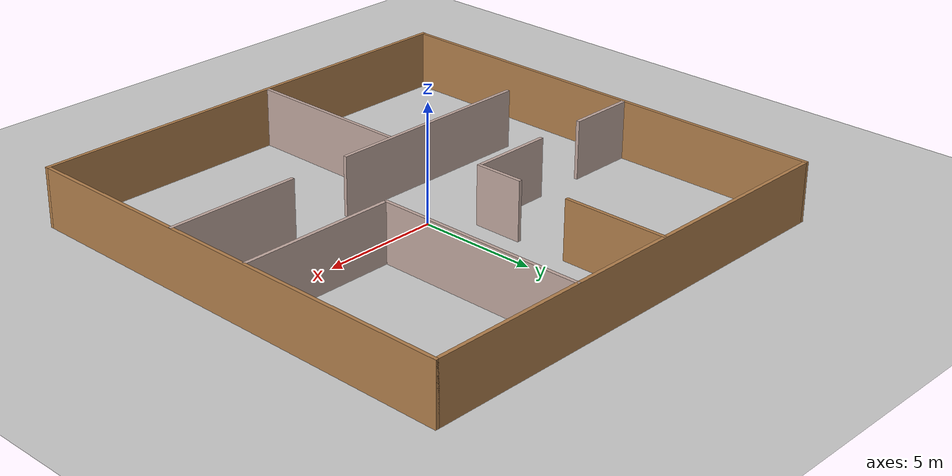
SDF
<sdf version="1.6">
 <world name="default">
  <light name="sun" type="directional">
   <pose>0 0 10 0 -0 0</pose>
   <diffuse>0.8 0.8 0.8 1</diffuse>
   <specular>0.2 0.2 0.2 1</specular>
   <attenuation>
    <range>1000</range>
    <constant>0.9</constant>
    <linear>0.01</linear>
    <quadratic>0.001</quadratic>
   </attenuation>
   <direction>-0.5 0.1 -0.9</direction>
  </light>
  <model name="ground_plane">
   <static>1</static>
   <link name="link">
    <collision name="collision">
     <geometry><plane><normal>0 0 1</normal><size>100 100</size></plane></geometry>
     <surface>
      <contact><collide_bitmask>65535</collide_bitmask></contact>
      <friction><ode><mu>100</mu><mu2>50</mu2></ode></friction>
     </surface>
    </collision>
    <visual name="visual">
     <cast_shadows>0</cast_shadows>
     <geometry><plane><normal>0 0 1</normal><size>100 100</size></plane></geometry>
     <material>
      <script><uri>file://media/materials/scripts/gazebo.material</uri><name>Gazebo/Grey</name></script>
     </material>
    </visual>
   </link>
  </model>
  <gravity>0 0 -9.8</gravity>
  <magnetic_field>6e-06 2.3e-05 -4.2e-05</magnetic_field>
  <atmosphere type="adiabatic"/>
  <physics name="default_physics" default="0" type="ode">
   <max_step_size>0.001</max_step_size>
   <real_time_factor>1</real_time_factor>
   <real_time_update_rate>1000</real_time_update_rate>
  </physics>
  <scene><ambient>0.4 0.4 0.4 1</ambient><background>0.7 0.7 0.7 1</background><shadows>1</shadows></scene>
  <audio><device>default</device></audio>
  <spherical_coordinates>
   <surface_model>EARTH_WGS84</surface_model>
   <latitude_deg>0</latitude_deg>
   <longitude_deg>0</longitude_deg>
   <elevation>0</elevation>
   <heading_deg>0</heading_deg>
  </spherical_coordinates>
  <model name="surroundings">
   <link name="Wall_0">
    <collision name="Wall_0_Collision">
     <geometry><box><size>20.15 0.15 2.5</size></box></geometry>
     <pose>0 0 1.25 0 -0 0</pose>
    </collision>
    <visual name="Wall_0_Visual">
     <pose>0 0 1.25 0 -0 0</pose>
     <geometry><box><size>20.15 0.15 2.5</size></box></geometry>
     <material>
      <script><uri>file://media/materials/scripts/gazebo.material</uri><name>Gazebo/Wood</name></script>
      <ambient>1 1 1 1</ambient>
     </material>
     <meta><layer>0</layer></meta>
    </visual>
    <pose>10 0 0 0 -0 -1.5708</pose>
   </link>
   <link name="Wall_1">
    <collision name="Wall_1_Collision">
     <geometry><box><size>20.15 0.15 2.5</size></box></geometry>
     <pose>0 0 1.25 0 -0 0</pose>
    </collision>
    <visual name="Wall_1_Visual">
     <pose>0 0 1.25 0 -0 0</pose>
     <geometry><box><size>20.15 0.15 2.5</size></box></geometry>
     <material>
      <script><uri>file://media/materials/scripts/gazebo.material</uri><name>Gazebo/Wood</name></script>
      <ambient>1 1 1 1</ambient>
     </material>
     <meta><layer>0</layer></meta>
    </visual>
    <pose>0 -10 0 0 -0 3.14159</pose>
   </link>
   <link name="Wall_2">
    <collision name="Wall_2_Collision">
     <geometry><box><size>20.15 0.15 2.5</size></box></geometry>
     <pose>0 0 1.25 0 -0 0</pose>
    </collision>
    <visual name="Wall_2_Visual">
     <pose>0 0 1.25 0 -0 0</pose>
     <geometry><box><size>20.15 0.15 2.5</size></box></geometry>
     <material>
      <script><uri>file://media/materials/scripts/gazebo.material</uri><name>Gazebo/Wood</name></script>
      <ambient>1 1 1 1</ambient>
     </material>
     <meta><layer>0</layer></meta>
    </visual>
    <pose>-10 0 0 0 -0 1.5708</pose>
   </link>
   <link name="Wall_3">
    <collision name="Wall_3_Collision">
     <geometry><box><size>20.15 0.15 2.5</size></box></geometry>
     <pose>0 0 1.25 0 -0 0</pose>
    </collision>
    <visual name="Wall_3_Visual">
     <pose>0 0 1.25 0 -0 0</pose>
     <geometry><box><size>20.15 0.15 2.5</size></box></geometry>
     <material>
      <script><uri>file://media/materials/scripts/gazebo.material</uri><name>Gazebo/Wood</name></script>
      <ambient>1 1 1 1</ambient>
     </material>
     <meta><layer>0</layer></meta>
    </visual>
    <pose>0 10 0 0 -0 0</pose>
   </link>
   <static>1</static>
  </model>
  <model name="model2">
   <link name="Wall_14">
    <collision name="Wall_14_Collision">
     <geometry><box><size>5.75 0.15 2.5</size></box></geometry>
     <pose>0 0 1.25 0 -0 0</pose>
    </collision>
    <visual name="Wall_14_Visual">
     <pose>0 0 1.25 0 -0 0</pose>
     <geometry><box><size>5.75 0.15 2.5</size></box></geometry>
     <material>
      <script><uri>file://media/materials/scripts/gazebo.material</uri><name>Gazebo/Grey</name></script>
      <ambient>0.760784 0.662745 0.627451 1</ambient>
     </material>
     <meta><layer>0</layer></meta>
    </visual>
    <pose>7.18182 -2.73449 0 0 -0 3.14159</pose>
   </link>
   <link name="Wall_16">
    <collision name="Wall_16_Collision">
     <geometry><box><size>9.25 0.15 2.5</size></box></geometry>
     <pose>0 0 1.25 0 -0 0</pose>
    </collision>
    <visual name="Wall_16_Visual">
     <pose>0 0 1.25 0 -0 0</pose>
     <geometry><box><size>9.25 0.15 2.5</size></box></geometry>
     <material>
      <script><uri>file://media/materials/scripts/gazebo.material</uri><name>Gazebo/Grey</name></script>
      <ambient>0.760784 0.662745 0.627451 1</ambient>
     </material>
     <meta><layer>0</layer></meta>
    </visual>
    <pose>-2.96432 -2.76823 0 0 -0 3.14159</pose>
   </link>
   <link name="Wall_18">
    <collision name="Wall_18_Collision">
     <geometry><box><size>7.25 0.15 2.5</size></box></geometry>
     <pose>0 0 1.25 0 -0 0</pose>
    </collision>
    <visual name="Wall_18_Visual">
     <pose>0 0 1.25 0 -0 0</pose>
     <geometry><box><size>7.25 0.15 2.5</size></box></geometry>
     <material>
      <script><uri>file://media/materials/scripts/gazebo.material</uri><name>Gazebo/Grey</name></script>
      <ambient>0.760784 0.662745 0.627451 1</ambient>
     </material>
     <meta><layer>0</layer></meta>
    </visual>
    <pose>-0.82189 -6.43381 0 0 -0 -1.5708</pose>
   </link>
   <link name="Wall_21">
    <collision name="Wall_21_Collision">
     <geometry><box><size>2.101 0.15 2.5</size></box></geometry>
     <pose>0 0 1.25 0 -0 0</pose>
    </collision>
    <visual name="Wall_21_Visual">
     <pose>0 0 1.25 0 -0 0</pose>
     <geometry><box><size>2.101 0.15 2.5</size></box></geometry>
     <material>
      <script><uri>file://media/materials/scripts/gazebo.material</uri><name>Gazebo/Grey</name></script>
      <ambient>0.760784 0.662745 0.627451 1</ambient>
     </material>
     <meta><layer>0</layer></meta>
    </visual>
    <pose>-1.32618 2.37587 0 0 -0 -1.5708</pose>
   </link>
   <link name="Wall_22">
    <collision name="Wall_22_Collision">
     <geometry><box><size>3.57114 0.15 2.5</size></box></geometry>
     <pose>0 0 1.25 0 -0 0</pose>
    </collision>
    <visual name="Wall_22_Visual">
     <pose>0 0 1.25 0 -0 0</pose>
     <geometry><box><size>3.57114 0.15 2.5</size></box></geometry>
     <material>
      <script><uri>file://media/materials/scripts/gazebo.material</uri><name>Gazebo/Grey</name></script>
      <ambient>0.760784 0.662745 0.627451 1</ambient>
     </material>
     <meta><layer>0</layer></meta>
    </visual>
    <pose>-3.06734 1.40027 0 0 -0 -3.14153</pose>
   </link>
   <link name="Wall_24">
    <collision name="Wall_24_Collision">
     <geometry><box><size>3 0.15 2.5</size></box></geometry>
     <pose>0 0 1.25 0 -0 0</pose>
    </collision>
    <visual name="Wall_24_Visual">
     <pose>0 0 1.25 0 -0 0</pose>
     <geometry><box><size>3 0.15 2.5</size></box></geometry>
     <material>
      <script><uri>file://media/materials/scripts/gazebo.material</uri><name>Gazebo/Grey</name></script>
      <ambient>0.760784 0.662745 0.627451 1</ambient>
     </material>
     <meta><layer>0</layer></meta>
    </visual>
    <pose>-8.55682 1.37424 0 0 -0 3.14159</pose>
   </link>
   <link name="Wall_5">
    <collision name="Wall_5_Collision">
     <geometry><box><size>4.43 0.15 2.5</size></box></geometry>
     <pose>0 0 1.25 0 -0 0</pose>
    </collision>
    <visual name="Wall_5_Visual">
     <pose>0 0 1.25 0 -0 0</pose>
     <geometry><box><size>4.43 0.15 2.5</size></box></geometry>
     <material>
      <script><uri>file://media/materials/scripts/gazebo.material</uri><name>Gazebo/Wood</name></script>
      <ambient>0.760784 0.662745 0.627451 1</ambient>
     </material>
     <meta><layer>0</layer></meta>
    </visual>
    <pose>-1.3489 7.80687 0 0 -0 -1.5708</pose>
   </link>
   <link name="Wall_7">
    <collision name="Wall_7_Collision">
     <geometry><box><size>9.02687 0.15 2.5</size></box></geometry>
     <pose>0 0 1.25 0 -0 0</pose>
    </collision>
    <visual name="Wall_7_Visual">
     <pose>0 0 1.25 0 -0 0</pose>
     <geometry><box><size>9.02687 0.15 2.5</size></box></geometry>
     <material>
      <script><uri>file://media/materials/scripts/gazebo.material</uri><name>Gazebo/Grey</name></script>
      <ambient>0.760784 0.662745 0.627451 1</ambient>
     </material>
     <meta><layer>0</layer></meta>
    </visual>
    <pose>3.2941 5.54537 0 0 -0 -1.5708</pose>
   </link>
   <link name="Wall_8">
    <collision name="Wall_8_Collision">
     <geometry><box><size>6.79012 0.15 2.5</size></box></geometry>
     <pose>0 0 1.25 0 -0 0</pose>
    </collision>
    <visual name="Wall_8_Visual">
     <pose>0 0 1.25 0 -0 0</pose>
     <geometry><box><size>6.79012 0.15 2.5</size></box></geometry>
     <material>
      <script><uri>file://media/materials/scripts/gazebo.material</uri><name>Gazebo/Grey</name></script>
      <ambient>0.760784 0.662745 0.627451 1</ambient>
     </material>
     <meta><layer>0</layer></meta>
    </visual>
    <pose>6.61416 1.11448 0 0 -0 0.002141</pose>
   </link>
   <static>1</static>
  </model>
  <plugin filename="libcollision_map_creator.so" name="collision_map_creator"/>
 </world>
</sdf>
